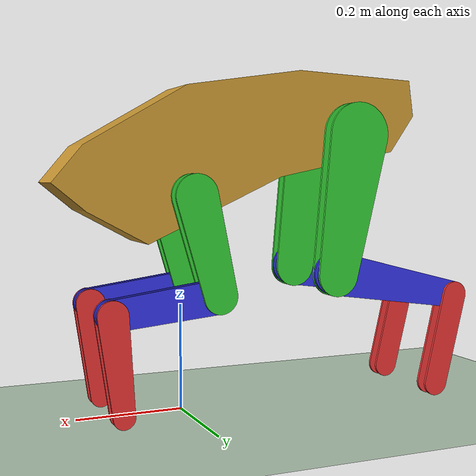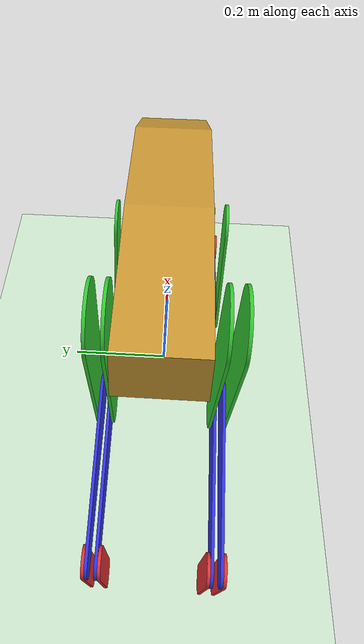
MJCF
<mujoco model="cheetah">
  <compiler angle="radian" coordinate="local" inertiafromgeom="true" settotalmass="14"/>
  <asset>
    <mesh name="body" file="stl/body_v1.stl" scale="0.001 0.001 0.001"/>
    <mesh name="back_left_thigh" file="stl/back_thigh_v1.stl" scale="0.001 0.001 0.001"/>
    <mesh name="back_right_thigh" file="stl/back_thigh_v1.stl" scale="0.001 -0.001 0.001"/>
    <mesh name="back_left_shin" file="stl/back_shin_v1.stl" scale="0.001 0.001 0.001"/>
    <mesh name="back_right_shin" file="stl/back_shin_v1.stl" scale="0.001 -0.001 0.001"/>
    <mesh name="back_left_foot" file="stl/back_foot_v1.stl" scale="0.001 0.001 0.001"/>
    <mesh name="back_right_foot" file="stl/back_foot_v1.stl" scale="0.001 -0.001 0.001"/>
    <mesh name="front_left_thigh" file="stl/front_thigh_v1.stl" scale="0.001 0.001 0.001"/>
    <mesh name="front_right_thigh" file="stl/front_thigh_v1.stl" scale="0.001 -0.001 0.001"/>
    <mesh name="front_left_shin" file="stl/front_shin_v1.stl" scale="0.001 0.001 0.001"/>
    <mesh name="front_right_shin" file="stl/front_shin_v1.stl" scale="0.001 -0.001 0.001"/>
    <mesh name="front_left_foot" file="stl/front_foot_v1.stl" scale="0.001 0.001 0.001"/>
    <mesh name="front_right_foot" file="stl/front_foot_v1.stl" scale="0.001 -0.001 0.001"/>
  </asset>
  <default>
    <joint armature=".1" damping=".01" limited="true" solimplimit="0 .8 .03" solreflimit=".02 1" stiffness="8"/>
    <geom conaffinity="0" condim="3" contype="1" friction=".4 .1 .1" rgba="0.8 0.6 .4 1" solimp="0.0 0.8 0.01" solref="0.02 1"/>
    <motor ctrllimited="true" ctrlrange="-1 1"/>
  </default>
  <size nstack="300000" nuser_geom="1"/>
  <option gravity="0 0 -9.81" timestep="0.01"/>
  <asset>
    <texture builtin="gradient" height="100" rgb1="1 1 1" rgb2="0 0 0" type="skybox" width="100"/>
    <texture builtin="flat" height="1278" mark="cross" markrgb="1 1 1" name="texgeom" random="0.01" rgb1="0.8 0.6 0.4" rgb2="0.8 0.6 0.4" type="cube" width="127"/>
    <texture builtin="checker" height="100" name="texplane" rgb1="0 0 0" rgb2="0.8 0.8 0.8" type="2d" width="100"/>
    <material name="MatPlane" reflectance="0.5" shininess="1" specular="1" texrepeat="60 60" texture="texplane"/>
    <material name="geom" texture="texgeom" texuniform="true"/>
  </asset>
  <worldbody>
    <light cutoff="100" diffuse="1 1 1" dir="-0 0 -1.3" directional="true" exponent="1" pos="0 0 1.3" specular=".1 .1 .1"/>
    <geom conaffinity="1" condim="3" material="MatPlane" name="floor" pos="0 0 0" rgba="0.8 0.9 0.8 1" size="40 40 40" type="plane"/>
    <body name="torso" pos="0 0 0.52">
      <joint armature="0" axis="1 0 0" damping="0" limited="false" name="rootx" pos="0 0 0" stiffness="0" type="slide"/>
      <joint armature="0" axis="0 0 1" damping="0" limited="false" name="rootz" pos="0 0 0" stiffness="0" type="slide"/>
      <joint armature="0" axis="0 1 0" damping="0" limited="false" name="rooty" pos="0 0 0" stiffness="0" type="hinge"/>
      <joint armature="0" axis="1 0 0" damping="0" limited="false" name="torsoroll" pos="0 0 0" stiffness="0" type="hinge"/>
      <geom pos="-0.324 0 0" type="mesh" mesh="body" rgba="0.8 0.6 0.2 1"/>
      <body name="back_left_thigh" pos="-.324 -.11 0">
        <joint axis="0 1 0" damping="6" name="back_left_hip" range="-1.5 1.5" stiffness="80" type="hinge"/>
        <geom pos="0 0 0" axisangle="0 1 0 -0.1638864168" type="mesh" mesh="back_left_thigh" rgba="0.2 0.8 0.2 1"/>
        <geom pos="0 .025 0" axisangle="0 1 0 -0.1638864168" type="mesh" mesh="back_left_thigh" rgba="0.2 0.8 0.2 1"/>
        <body name="back_left_shin" pos="0.044 0 -.266">
          <joint axis="0 1 0" damping="4.5" name="back_left_knee" pos="0 -0.3 0" range="-1.1 1.1" stiffness="60" type="hinge"/>
          <geom pos="0 0.005 0" axisangle="0 1 0 1.3777629115" type="mesh" mesh="back_left_shin" rgba="0.2 0.2 0.9 1"/>
          <geom pos="0 0.020 0" axisangle="0 1 0 1.3777629115" type="mesh" mesh="back_left_shin" rgba="0.2 0.2 0.9 1"/>
          <body name="back_left_foot" pos="-.266 0 -.052">
            <joint axis="0 1 0" damping="3" name="back_left_ankle" pos="0 -0.3 0" range="-.7 .7" stiffness="40" type="hinge"/>
            <geom pos="0 0 0" axisangle="0 1 0 -0.2382374429" type="mesh" mesh="back_left_foot" rgba="0.9 0.2 0.2 1" />
            <geom pos="0 0.025 0" axisangle="0 1 0 -0.2382374429" type="mesh" mesh="back_left_foot" rgba="0.9 0.2 0.2 1" />
          </body>
        </body>
      </body>
      <body name="back_right_thigh" pos="-.324 .11 0">
        <joint axis="0 1 0" damping="6" name="back_right_hip" range="-1.5 1.5" stiffness="80" type="hinge"/>
        <geom pos="0 0 0" axisangle="0 1 0 -0.1638864168" type="mesh" mesh="back_right_thigh" rgba="0.2 0.8 0.2 1"/>
        <geom pos="0 -.025 0" axisangle="0 1 0 -0.1638864168" type="mesh" mesh="back_right_thigh" rgba="0.2 0.8 0.2 1"/>
        <body name="back_right_shin" pos="0.044 0 -.266">
          <joint axis="0 1 0" damping="4.5" name="back_right_knee" pos="0 -0.3 0" range="-1.1 1.1" stiffness="60" type="hinge"/>
          <geom pos="0 -0.005 0" axisangle="0 1 0 1.3777629115" type="mesh" mesh="back_right_shin" rgba="0.2 0.2 0.9 1"/>
          <geom pos="0 -0.020 0" axisangle="0 1 0 1.3777629115" type="mesh" mesh="back_right_shin" rgba="0.2 0.2 0.9 1"/>
          <body name="back_right_foot" pos="-.266 0 -.052">
            <joint axis="0 1 0" damping="3" name="back_right_ankle" pos="0 -0.3 0" range="-.7 .7" stiffness="40" type="hinge"/>
            <geom pos="0 0 0" axisangle="0 1 0 -0.2382374429" type="mesh" mesh="back_right_foot" rgba="0.9 0.2 0.2 1" />
            <geom pos="0 -0.025 0" axisangle="0 1 0 -0.2382374429" type="mesh" mesh="back_right_foot" rgba="0.9 0.2 0.2 1" />
          </body>
        </body>
      </body>
      <body name="front_left_thigh" pos="0 .07 -.113">
        <joint axis="0 1 0" damping="4.5" name="front_left_hip" range="-1.5 1.5" stiffness="60" type="hinge"/>
        <geom pos="0 0 0" axisangle="0 1 0 0.2398082392" type="mesh" mesh="front_left_thigh" rgba="0.2 0.8 0.2 1"/>
        <geom pos="0 .025 0" axisangle="0 1 0 0.23980823928" type="mesh" mesh="front_left_thigh" rgba="0.2 0.8 0.2 1"/>
        <body name="front_left_shin" pos="-0.045 0 -.184">
          <joint axis="0 1 0" damping="3" name="front_left_knee" pos="0 -0.3 0" range="-1.1 1.1" stiffness="40" type="hinge"/>
          <geom pos="0 0.005 0" axisangle="0 1 0 -1.4557791291" type="mesh" mesh="front_left_shin" rgba="0.2 0.2 0.9 1"/>
          <geom pos="0 0.020 0" axisangle="0 1 0 -1.4557791291" type="mesh" mesh="front_left_shin" rgba="0.2 0.2 0.9 1"/>
          <body name="front_left_foot" pos=".199 0 -.023">
            <joint axis="0 1 0" damping="1.5" name="front_left_ankle" pos="0 -0.3 0" range="-.7 .7" stiffness="20" type="hinge"/>
            <geom pos="0 0 0" axisangle="0 1 0 0.09965830029" type="mesh" mesh="front_left_foot" rgba="0.9 0.2 0.2 1" />
            <geom pos="0 0.025 0" axisangle="0 1 0 0.09965830029" type="mesh" mesh="front_left_foot" rgba="0.9 0.2 0.2 1" />
          </body>
        </body>
      </body>
      <body name="front_right_thigh" pos="0 -.07 -.113">
        <joint axis="0 1 0" damping="4.5" name="front_right_hip" range="-1.5 1.5" stiffness="60" type="hinge"/>
        <geom pos="0 0 0" axisangle="0 1 0 0.2398082392" type="mesh" mesh="front_right_thigh" rgba="0.2 0.8 0.2 1"/>
        <geom pos="0 -.025 0" axisangle="0 1 0 0.23980823928" type="mesh" mesh="front_right_thigh" rgba="0.2 0.8 0.2 1"/>
        <body name="front_right_shin" pos="-0.045 0 -.184">
          <joint axis="0 1 0" damping="3" name="front_right_knee" pos="0 -0.3 0" range="-1.1 1.1" stiffness="40" type="hinge"/>
          <geom pos="0 -0.005 0" axisangle="0 1 0 -1.4557791291" type="mesh" mesh="front_right_shin" rgba="0.2 0.2 0.9 1"/>
          <geom pos="0 -0.020 0" axisangle="0 1 0 -1.4557791291" type="mesh" mesh="front_right_shin" rgba="0.2 0.2 0.9 1"/>
          <body name="front_right_foot" pos=".199 0 -.023">
            <joint axis="0 1 0" damping="1.5" name="front_right_ankle" pos="0 -0.3 0" range="-.7 .7" stiffness="10" type="hinge"/>
            <geom pos="0 0 0" axisangle="0 1 0 0.09965830029" type="mesh" mesh="front_right_foot" rgba="0.9 0.2 0.2 1" />
            <geom pos="0 -0.025 0" axisangle="0 1 0 0.09965830029" type="mesh" mesh="front_right_foot" rgba="0.9 0.2 0.2 1" />
          </body>
        </body>
      </body>
    </body>
  </worldbody>
  <actuator>
    <motor gear="30" joint="back_left_hip" name="back_left_hip"/>
    <motor gear="20" joint="back_left_knee" name="back_left_knee"/>
    <motor gear="10" joint="back_left_ankle" name="back_left_ankle"/>
    <motor gear="30" joint="back_right_hip" name="back_right_hip"/>
    <motor gear="20" joint="back_right_knee" name="back_right_knee"/>
    <motor gear="10" joint="back_right_ankle" name="back_right_ankle"/>
    <motor gear="30" joint="front_left_hip" name="front_left_hip"/>
    <motor gear="20" joint="front_left_knee" name="front_left_knee"/>
    <motor gear="10" joint="front_left_ankle" name="front_left_ankle"/>
    <motor gear="30" joint="front_right_hip" name="front_right_hip"/>
    <motor gear="20" joint="front_right_knee" name="front_right_knee"/>
    <motor gear="10" joint="front_right_ankle" name="front_right_ankle"/>
  </actuator>
</mujoco>
